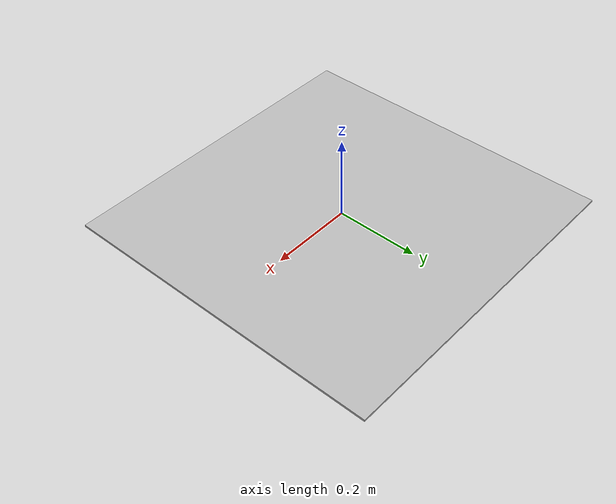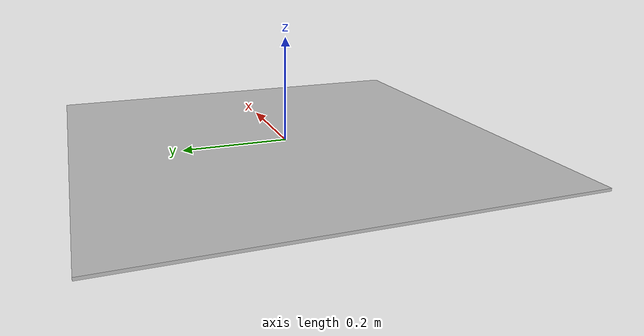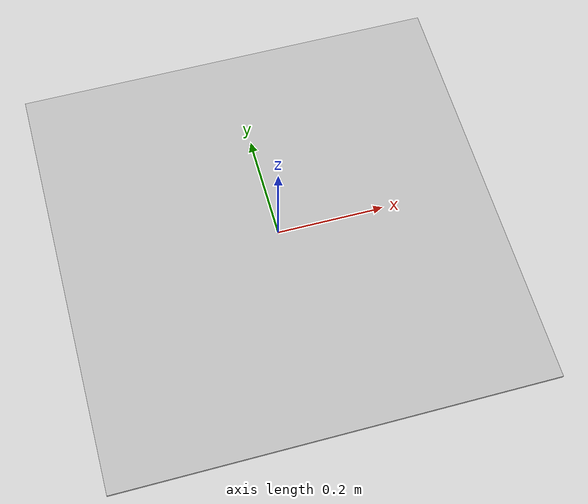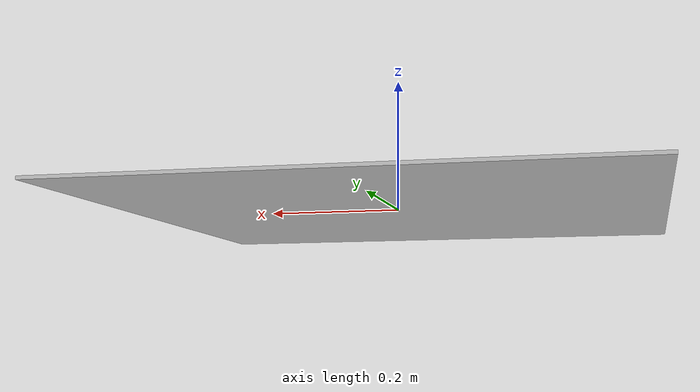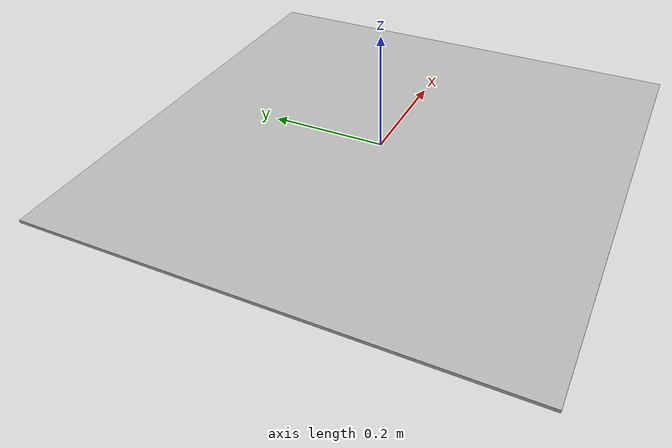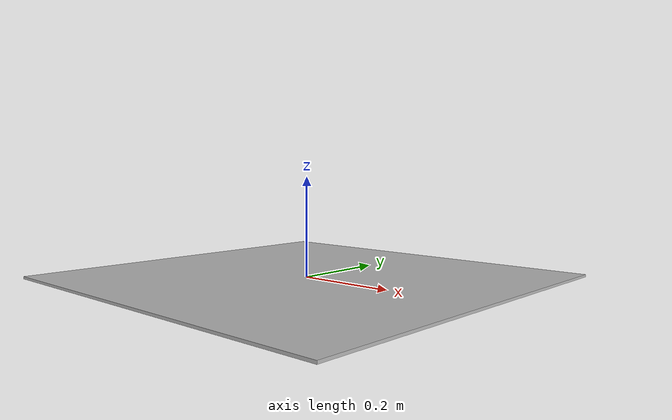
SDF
<?xml version='1.0'?>
<sdf version='1.4'>
  <model name="kalibr_tag">
    <static>true</static>
    <link name='link'>

      <pose>0 0 0 0 0 0</pose>
      <inertial>
        <mass>0.1</mass>
          <inertia>
          <ixx>0.000166667</ixx>
          <iyy>0.000166667</iyy>
          <izz>0.000166667</izz>
        </inertia>
      </inertial>
      <collision name='collision'>
        <geometry>
                <box>
                  <size>0.8 0.8 0.005</size>
                </box>
        </geometry>
      </collision>

      <visual name='visual'>
        <geometry>
                <box>
                  <size>0.8 0.8 0.005</size>
                </box>
        </geometry>

        <material>
          <script>
            <uri>model://kalibr_tag/materials/scripts</uri>
            <uri>model://kalibr_tag/materials/textures</uri>
            <name>Kalibr_tag/Diffuse</name>
          </script>
        </material>
      </visual>
    </link>
  </model>
</sdf>
